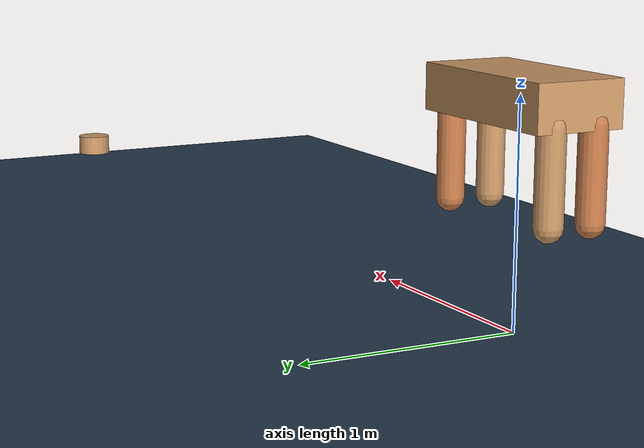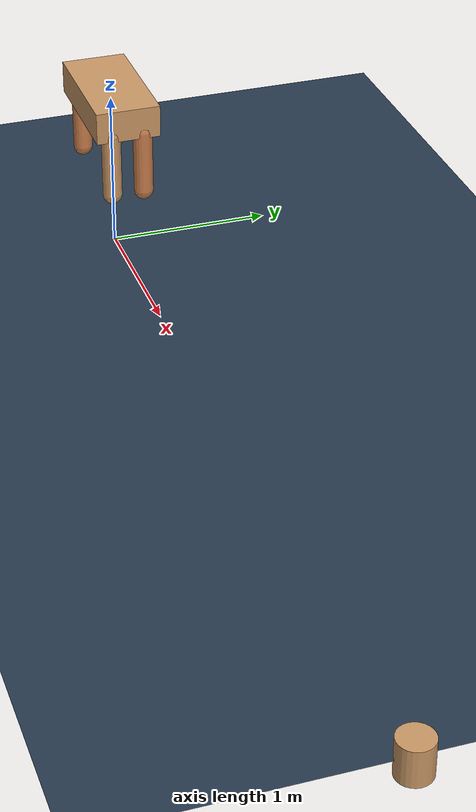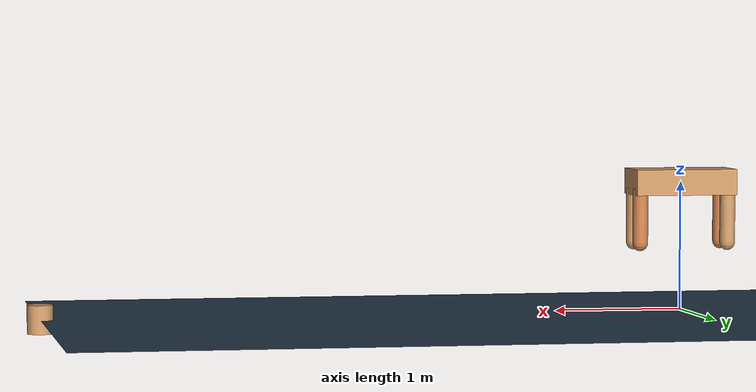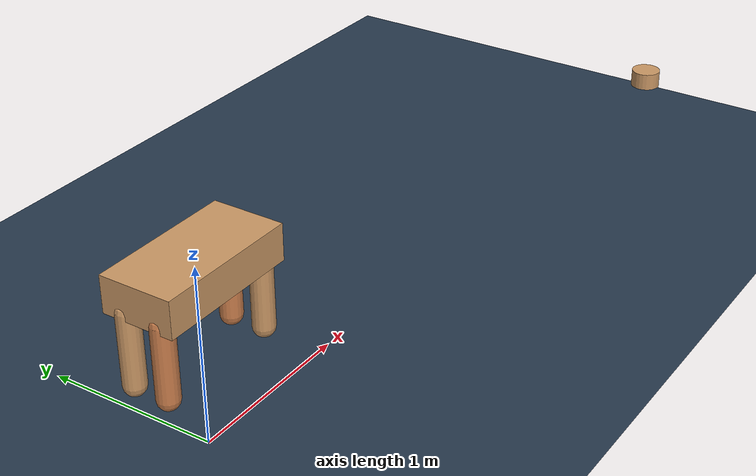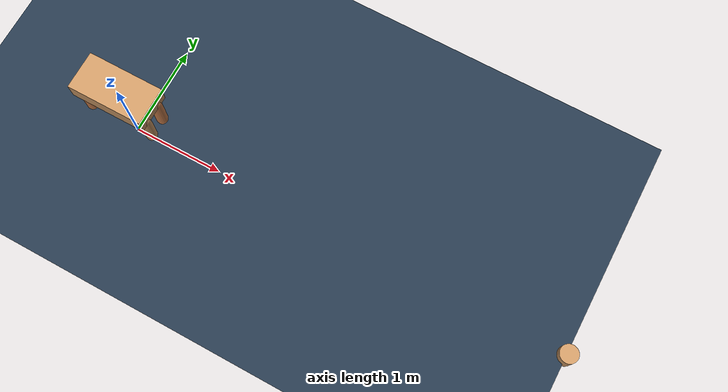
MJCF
<mujoco model="quad_world">
    <compiler inertiafromgeom="true" angle="degree"/>

    <default>
        <joint limited="true" damping="1" armature="0"/>
        <geom condim="1" material="geom"/>
        <motor ctrlrange="-.4 .4" ctrllimited="true"/>
    </default>

    <option timestep="0.005" iterations="50" tolerance="1e-10" solver="Newton" jacobian="dense" cone="pyramidal"/>

    <size nconmax="50" njmax="200" nstack="10000"/>

    <visual>
        <map fogstart="3" fogend="5" force="0.1" znear="0.5"/>
        <quality shadowsize="2048" offsamples="8"/>
        <global offwidth="800" offheight="800"/>
    </visual>

    <asset>
        <texture type="skybox" builtin="gradient" width="128" height="128" rgb1=".4 .6 .8"
            rgb2="0 0 0"/>
        <texture name="texgeom" type="cube" builtin="flat" mark="cross" width="127" height="1278"
            rgb1="0.8 0.6 0.4" rgb2="0.8 0.6 0.4" markrgb="1 1 1" random="0.01"/>
        <texture name="texplane" type="2d" builtin="checker" rgb1=".2 .3 .4" rgb2=".1 0.15 0.2"
            width="512" height="512"/>

        <material name='matplane' reflectance='0.3' texture="texplane" texrepeat="1 1" texuniform="true"/>
        <material name='geom' texture="texgeom" texuniform="true"/>
    </asset>

    <worldbody>
	<geom name='floor' density='100' pos='0 0 0' size='5 5 .125' type='plane' material="matplane" condim='3'/>
	<geom name="target" pos="5 0 0" size="0.1 0.11" type="cylinder" />
        <light directional="false" diffuse=".2 .2 .2" specular="0 0 0" pos="0 0 5" dir="0 0 -1" castshadow="false"/>
        <light mode="targetbodycom" target="torso" directional="false" diffuse=".8 .8 .8" specular="0.3 0.3 0.3" pos="0 0 4.0" dir="0 0 -1"/>
	<body name="torso" pos="0 0 1">
        <freejoint name="root"/>
        <geom name="torso_geom" pos="0 0 0" size="0.4 0.2 0.1" type="box"/>
        <body name="front_left_leg" pos="0.35 0.1 -0.075">
          <geom fromto="0.0 0.0 0.0 0.0 0.0 -0.4" name="aux_1_geom" size="0.06" type="capsule" rgba    =".8 .5 .3 1"/>
	  <joint axis = "0 1 0" name = "hip_1" pos= "0.0 0.0 0.0" range="-40 40" type="hinge"/>
	  <joint axis = "1 0 0" name = "hip_side_1" pos="0.0 0.0 0.0" range="-10 10" type ="hinge"/>
        </body>
        <body name="front_right_leg" pos="0.35 -0.1 -0.075">
                <geom fromto="0.0 0.0 0.0 0.0 0.0 -0.4" name="aux_2_geom" size="0.06" type="capsule"/>
		<joint axis="0 1 0" name="hip_2" pos="0.0 0.0 0.0" range="-40 40" type="hinge"/>
		<joint axis = "1 0 0" name = "hip_side_2" pos="0.0 0.0 0.0" range="-10 10" type ="hinge"/>

        </body>
        <body name="left_back_leg" pos="-0.35 0.1 -0.075">
          <geom fromto="0.0 0.0 0.0 0.0 0.0 -0.4" name="aux_3_geom" size="0.06" type="capsule"/>
	  <joint axis="0 1 0" name="hip_3" pos="0.0 0.0 0.0" range="-40 40" type="hinge"/>
	  <joint axis = "1 0 0" name = "hip_side_3" pos="0.0 0.0 0.0" range="-10 10" type ="hinge"/>
        </body>
        <body name="right_back_leg" pos="-0.35 -0.1 -0.075">
          <geom fromto="0.0 0.0 0.0 0.0 0.0 -0.4" name="aux_4_geom" size="0.06" type="capsule" rgba    =".8 .5 .3 1"/>
	  <joint axis="0 1 0" name="hip_4" pos="0.0 0.0 0.0" range="-40 40" type="hinge"/>
	  <joint axis = "1 0 0" name = "hip_side_4" pos="0.0 0.0 0.0" range="-10 10" type ="hinge"/>
         </body>
      </body>

    </worldbody>

    <actuator>
     <motor ctrllimited="true" ctrlrange="-5.0 5.0" joint="hip_4" gear="150"/>
     <motor ctrllimited="true" ctrlrange="-5.0 5.0" joint="hip_1" gear="150"/>
     <motor ctrllimited="true" ctrlrange="-5.0 5.0" joint="hip_2" gear="150"/>
     <motor ctrllimited="true" ctrlrange="-5.0 5.0" joint="hip_3" gear="150"/>
     <motor ctrllimited="true" ctrlrange="-5.0 5.0" joint="hip_side_1" gear="150"/>
     <motor ctrllimited="true" ctrlrange="-5.0 5.0" joint="hip_side_2" gear="150"/>
     <motor ctrllimited="true" ctrlrange="-5.0 5.0" joint="hip_side_3" gear="150"/>
     <motor ctrllimited="true" ctrlrange="-5.0 5.0" joint="hip_side_4" gear="150"/>
    </actuator>

</mujoco>
